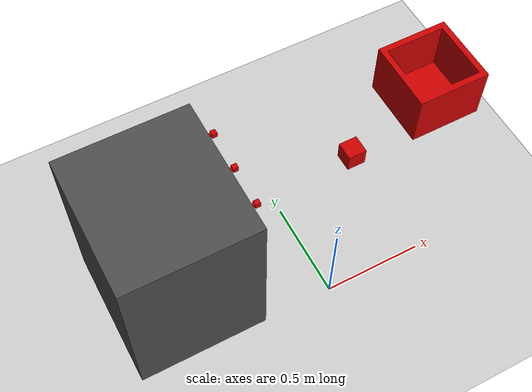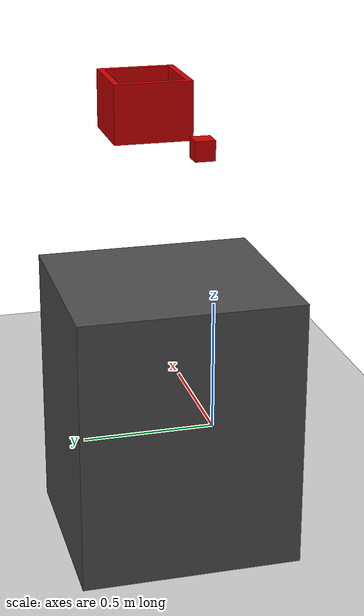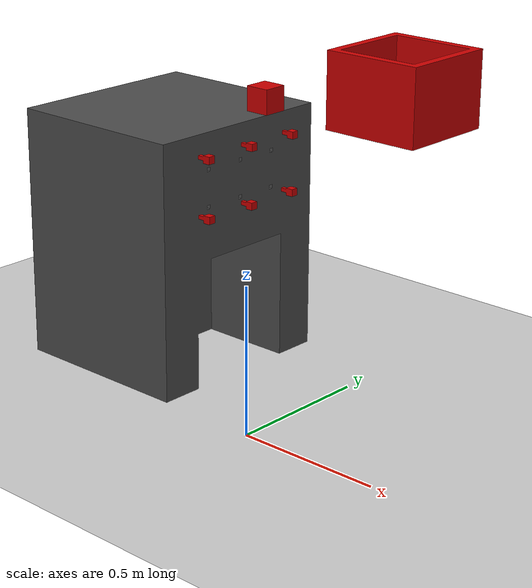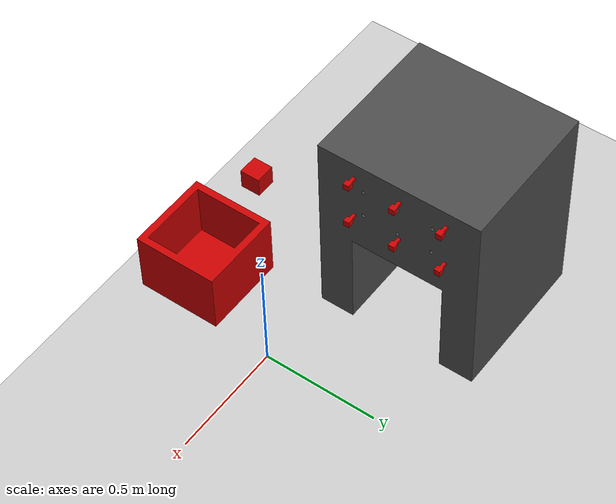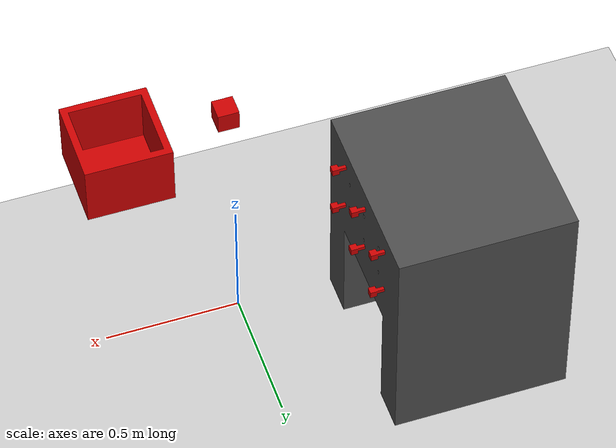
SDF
<sdf version="1.6">
 <world name="default">
  <include><uri>model://sun</uri></include>
  <include><uri>model://ground_plane</uri></include>
  <include><uri>model://CreditCube</uri><name>CreditCube</name><pose>0 0 1.05 0 0 0</pose></include>
  <include><uri>model://TransportBox</uri><name>TransportBox</name><pose>0.3 0 1.05 0 0 0</pose></include>
  <include><uri>model://Panel</uri><name>Panel</name><pose>-1 0 0 0 0 0</pose></include>
 </world>
</sdf>

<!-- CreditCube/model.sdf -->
<sdf version="1.11">
  <model name="button">
    <static>false</static>
    <link name="link">
      <collision name="collision">
        <pose>0 0 0.0 0 0 0</pose>
        <geometry>
          <mesh>
            <uri>meshes/CreditCube.stl</uri>
          </mesh>
        </geometry>
      </collision>
      <visual name="visual">
        <geometry>
          <mesh>
            <uri>meshes/CreditCube.stl</uri>
          </mesh>
        </geometry>
        <material>
          <ambient>0.5 0.0 0.0 1</ambient>
          <diffuse>0.8 0.0 0.0 1</diffuse>
          <specular>0.9 0.4 0.4 1</specular>
        </material>
      </visual>
      <sensor name="button_contact" type="contact">
        <contact>
          <collision>collision</collision>
        </contact>
        <always_on>true</always_on>
        <update_rate>30</update_rate>
      </sensor>
    </link>
    <plugin filename="ignition-gazebo-contact-system" name="gz::sim::systems::Contact"/>
  </model>
</sdf>

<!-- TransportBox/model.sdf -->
<sdf version="1.7">
  <model name="TransportBox">
    <static>false</static>
    <link name="link">
      <inertial>
        <pose>0.1524 0.1524 0.1143 0 0 0</pose>
        <mass>0.5</mass>
        <inertia>
          <ixx>0.006048</ixx><ixy>0</ixy><ixz>0</ixz>
          <iyy>0.006048</iyy><iyz>0</iyz>
          <izz>0.007742</izz>
        </inertia>
      </inertial>
      <collision name="collision">
        <pose>0 0 0.0 0 0 0</pose>
        <geometry>
          <mesh>
            <uri>model://TransportBox/meshes/TransportBox.stl</uri>
          </mesh>
        </geometry>
      </collision>
      <visual name="visual">
        <geometry>
          <mesh>
            <uri>model://TransportBox/meshes/TransportBox.stl</uri>
          </mesh>
        </geometry>
        <material>
          <ambient>0.5 0.0 0.0 1</ambient>
          <diffuse>0.8 0.0 0.0 1</diffuse>
          <specular>0.9 0.4 0.4 1</specular>
        </material>
      </visual>
      <sensor name="transport_box_contact" type="contact">
        <contact>
          <collision>collision</collision>
        </contact>
        <always_on>true</always_on>
        <update_rate>30</update_rate>
        <plugin name="transport_box_bumper" filename="libgazebo_ros_bumper.so">
          <ros>
            <remapping>~/out:=transport_box_contact</remapping>
          </ros>
          <frame_name>link</frame_name>
        </plugin>
      </sensor>
    </link>
  </model>
</sdf>

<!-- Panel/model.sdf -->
<sdf version="1.7">
  <model name="panel">
    <static>true</static>
    <link name="link">
      <collision name="collision">
        <pose>0 0 0.0 0 0 0</pose>
        <geometry>
          <mesh>
            <uri>model://Panel/meshes/ButtonPanel.stl</uri>
          </mesh>
        </geometry>
      </collision>
      <visual name="visual">
        <geometry>
          <mesh>
            <uri>model://Panel/meshes/ButtonPanel.stl</uri>
          </mesh>
        </geometry>
        <material>
          <ambient>0.2 0.2 0.2 1</ambient>
          <diffuse>0.3 0.3 0.3 1</diffuse>
          <specular>0.5 0.5 0.5 1</specular>
        </material>
      </visual>
    </link>
    <!-- 3x2 grid of buttons on the front face -->
    <!-- Stems point into panel along -X, caps face outward -->
    <!-- Row 1 (bottom) -->
    <include>
      <uri>model://Button</uri>
      <name>Button_1</name>
      <pose>0.7 0.15 0.59 0 -1.5708 0</pose>
    </include>
    <include>
      <uri>model://Button</uri>
      <name>Button_2</name>
      <pose>0.7 0.35 0.59 0 -1.5708 0</pose>
    </include>
    <include>
      <uri>model://Button</uri>
      <name>Button_3</name>
      <pose>0.7 0.55 0.59 0 -1.5708 0</pose>
    </include>
    <!-- Row 2 (top) -->
    <include>
      <uri>model://Button</uri>
      <name>Button_4</name>
      <pose>0.7 0.15 0.79 0 -1.5708 0</pose>
    </include>
    <include>
      <uri>model://Button</uri>
      <name>Button_5</name>
      <pose>0.7 0.35 0.79 0 -1.5708 0</pose>
    </include>
    <include>
      <uri>model://Button</uri>
      <name>Button_6</name>
      <pose>0.7 0.55 0.79 0 -1.5708 0</pose>
    </include>
  </model>
</sdf>

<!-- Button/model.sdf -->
<sdf version="1.7">
  <model name="button">
    <static>true</static>
    <link name="link">
      <collision name="collision">
        <pose>0 0 0.0 0 0 0</pose>
        <geometry>
          <mesh>
            <uri>model://Button/meshes/1x1Button.stl</uri>
          </mesh>
        </geometry>
      </collision>
      <visual name="visual">
        <geometry>
          <mesh>
            <uri>model://Button/meshes/1x1Button.stl</uri>
          </mesh>
        </geometry>
        <material>
          <ambient>0.5 0.0 0.0 1</ambient>
          <diffuse>0.8 0.0 0.0 1</diffuse>
          <specular>0.9 0.4 0.4 1</specular>
        </material>
      </visual>
      <sensor name="button_contact" type="contact">
        <contact>
          <collision>collision</collision>
        </contact>
        <always_on>true</always_on>
        <update_rate>30</update_rate>
      </sensor>
    </link>
  </model>
</sdf>
